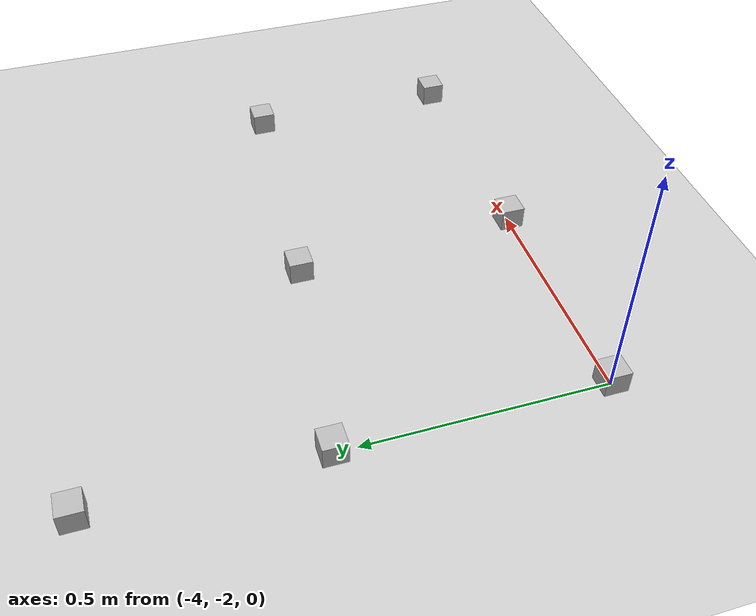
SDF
<sdf version="1.4">
 <world name="default">
  <model name="ground_plane">
   <static>1</static>
   <link name="link">
    <collision name="collision">
     <geometry><plane><normal>0 0 1</normal><size>100 100</size></plane></geometry>
     <surface><friction><ode><mu>100</mu><mu2>50</mu2></ode></friction></surface>
    </collision>
    <visual name="visual">
     <cast_shadows>0</cast_shadows>
     <geometry><plane><normal>0 0 1</normal><size>100 100</size></plane></geometry>
     <material>
      <script><uri>file://media/materials/scripts/gazebo.material</uri><name>Gazebo/Grey</name></script>
     </material>
    </visual>
    <velocity_decay><linear>0</linear><angular>0</angular></velocity_decay>
   </link>
  </model>
  <model name="at0_55">
   <static>1</static>
   <link name="link">
    <pose>0 0 0.025 0 -0 0</pose>
    <inertial>
     <mass>0.1</mass>
     <inertia><ixx>4e-05</ixx><ixy>0</ixy><ixz>0</ixz><iyy>4e-05</iyy><iyz>0</iyz><izz>4e-05</izz></inertia>
    </inertial>
    <visual name="visual">
     <transparency>0.1</transparency>
     <geometry><box><size>0.05 0.05 0.05</size></box></geometry>
     <material>
      <script>
       <uri>model://at0/materials/scripts</uri>
       <uri>model://at0/materials/textures</uri>
       <name>at0/Diffuse</name>
      </script>
     </material>
    </visual>
    <collision name="collision">
     <pose>0 0 -0.0125 0 -0 0</pose>
     <geometry><box><size>0.05 0.05 0.025</size></box></geometry>
     <surface><friction><ode><mu>0.8</mu><mu2>0.7</mu2></ode></friction></surface>
    </collision>
    <velocity_decay><linear>0</linear><angular>0</angular></velocity_decay>
   </link>
   <pose>-3 -1.55768 0 0 -0 0</pose>
  </model>
  <model name="at0_58">
   <static>1</static>
   <link name="link">
    <pose>0 0 0.025 0 -0 0</pose>
    <inertial>
     <mass>0.1</mass>
     <inertia><ixx>4e-05</ixx><ixy>0</ixy><ixz>0</ixz><iyy>4e-05</iyy><iyz>0</iyz><izz>4e-05</izz></inertia>
    </inertial>
    <visual name="visual">
     <transparency>0.1</transparency>
     <geometry><box><size>0.05 0.05 0.05</size></box></geometry>
     <material>
      <script>
       <uri>model://at0/materials/scripts</uri>
       <uri>model://at0/materials/textures</uri>
       <name>at0/Diffuse</name>
      </script>
     </material>
    </visual>
    <collision name="collision">
     <pose>0 0 -0.0125 0 -0 0</pose>
     <geometry><box><size>0.05 0.05 0.025</size></box></geometry>
     <surface><friction><ode><mu>0.8</mu><mu2>0.7</mu2></ode></friction></surface>
    </collision>
    <velocity_decay><linear>0</linear><angular>0</angular></velocity_decay>
   </link>
   <pose>-3 -2 0 0 -0 0</pose>
  </model>
  <model name="at0_101">
   <static>1</static>
   <link name="link">
    <pose>0 0 0.025 0 -0 0</pose>
    <inertial>
     <mass>0.1</mass>
     <inertia><ixx>4e-05</ixx><ixy>0</ixy><ixz>0</ixz><iyy>4e-05</iyy><iyz>0</iyz><izz>4e-05</izz></inertia>
    </inertial>
    <visual name="visual">
     <transparency>0.1</transparency>
     <geometry><box><size>0.05 0.05 0.05</size></box></geometry>
     <material>
      <script>
       <uri>model://at0/materials/scripts</uri>
       <uri>model://at0/materials/textures</uri>
       <name>at0/Diffuse</name>
      </script>
     </material>
    </visual>
    <collision name="collision">
     <pose>0 0 -0.0125 0 -0 0</pose>
     <geometry><box><size>0.05 0.05 0.025</size></box></geometry>
     <surface><friction><ode><mu>0.8</mu><mu2>0.7</mu2></ode></friction></surface>
    </collision>
    <velocity_decay><linear>0</linear><angular>0</angular></velocity_decay>
   </link>
   <pose>-3.53732 -1.51241 0 0 -0 0</pose>
  </model>
  <model name="at0_126">
   <static>1</static>
   <link name="link">
    <pose>0 0 0.025 0 -0 0</pose>
    <inertial>
     <mass>0.1</mass>
     <inertia><ixx>4e-05</ixx><ixy>0</ixy><ixz>0</ixz><iyy>4e-05</iyy><iyz>0</iyz><izz>4e-05</izz></inertia>
    </inertial>
    <visual name="visual">
     <transparency>0.1</transparency>
     <geometry><box><size>0.05 0.05 0.05</size></box></geometry>
     <material>
      <script>
       <uri>model://at0/materials/scripts</uri>
       <uri>model://at0/materials/textures</uri>
       <name>at0/Diffuse</name>
      </script>
     </material>
    </visual>
    <collision name="collision">
     <pose>0 0 -0.0125 0 -0 0</pose>
     <geometry><box><size>0.05 0.05 0.025</size></box></geometry>
     <surface><friction><ode><mu>0.8</mu><mu2>0.7</mu2></ode></friction></surface>
    </collision>
    <velocity_decay><linear>0</linear><angular>0</angular></velocity_decay>
   </link>
   <pose>-4 -1.4529 0 0 -0 0</pose>
  </model>
  <model name="at0_154">
   <static>1</static>
   <link name="link">
    <pose>0 0 0.025 0 -0 0</pose>
    <inertial>
     <mass>0.1</mass>
     <inertia><ixx>4e-05</ixx><ixy>0</ixy><ixz>0</ixz><iyy>4e-05</iyy><iyz>0</iyz><izz>4e-05</izz></inertia>
    </inertial>
    <visual name="visual">
     <transparency>0.1</transparency>
     <geometry><box><size>0.05 0.05 0.05</size></box></geometry>
     <material>
      <script>
       <uri>model://at0/materials/scripts</uri>
       <uri>model://at0/materials/textures</uri>
       <name>at0/Diffuse</name>
      </script>
     </material>
    </visual>
    <collision name="collision">
     <pose>0 0 -0.0125 0 -0 0</pose>
     <geometry><box><size>0.05 0.05 0.025</size></box></geometry>
     <surface><friction><ode><mu>0.8</mu><mu2>0.7</mu2></ode></friction></surface>
    </collision>
    <velocity_decay><linear>0</linear><angular>0</angular></velocity_decay>
   </link>
   <pose>-4 -1 0 0 -0 0</pose>
  </model>
  <model name="at0_155">
   <static>1</static>
   <link name="link">
    <pose>0 0 0.025 0 -0 0</pose>
    <inertial>
     <mass>0.1</mass>
     <inertia><ixx>4e-05</ixx><ixy>0</ixy><ixz>0</ixz><iyy>4e-05</iyy><iyz>0</iyz><izz>4e-05</izz></inertia>
    </inertial>
    <visual name="visual">
     <transparency>0.1</transparency>
     <geometry><box><size>0.05 0.05 0.05</size></box></geometry>
     <material>
      <script>
       <uri>model://at0/materials/scripts</uri>
       <uri>model://at0/materials/textures</uri>
       <name>at0/Diffuse</name>
      </script>
     </material>
    </visual>
    <collision name="collision">
     <pose>0 0 -0.0125 0 -0 0</pose>
     <geometry><box><size>0.05 0.05 0.025</size></box></geometry>
     <surface><friction><ode><mu>0.8</mu><mu2>0.7</mu2></ode></friction></surface>
    </collision>
    <velocity_decay><linear>0</linear><angular>0</angular></velocity_decay>
   </link>
   <pose>-4 -2 0 0 -0 0</pose>
  </model>
  <model name="at0_156">
   <static>1</static>
   <link name="link">
    <pose>0 0 0.025 0 -0 0</pose>
    <inertial>
     <mass>0.1</mass>
     <inertia><ixx>4e-05</ixx><ixy>0</ixy><ixz>0</ixz><iyy>4e-05</iyy><iyz>0</iyz><izz>4e-05</izz></inertia>
    </inertial>
    <visual name="visual">
     <transparency>0.1</transparency>
     <geometry><box><size>0.05 0.05 0.05</size></box></geometry>
     <material>
      <script>
       <uri>model://at0/materials/scripts</uri>
       <uri>model://at0/materials/textures</uri>
       <name>at0/Diffuse</name>
      </script>
     </material>
    </visual>
    <collision name="collision">
     <pose>0 0 -0.0125 0 -0 0</pose>
     <geometry><box><size>0.05 0.05 0.025</size></box></geometry>
     <surface><friction><ode><mu>0.8</mu><mu2>0.7</mu2></ode></friction></surface>
    </collision>
    <velocity_decay><linear>0</linear><angular>0</angular></velocity_decay>
   </link>
   <pose>-3.50923 -2 0 0 -0 0</pose>
  </model>
 </world>
</sdf>
